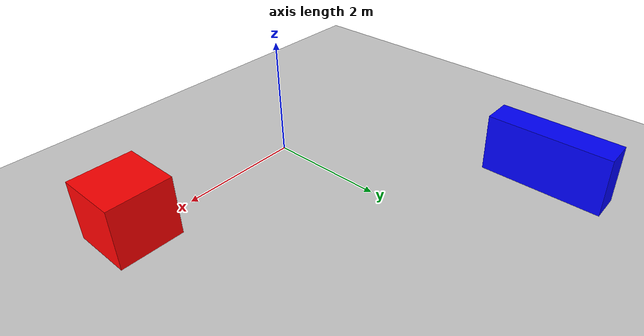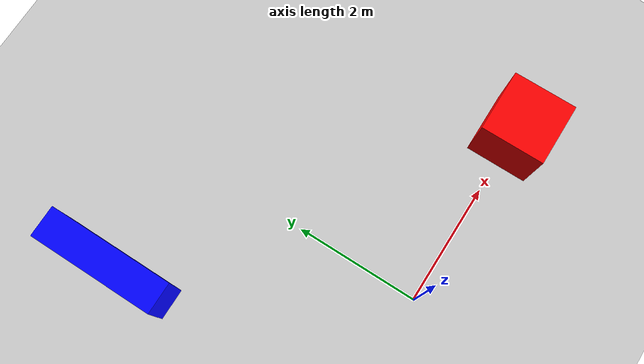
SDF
<?xml version="1.0" ?>
<sdf version="1.6">
  <world name="uav_world">

    <!-- Default ground plane -->
    <include>
      <uri>model://ground_plane</uri>
    </include>

    <!-- Sunlight -->
    <include>
      <uri>model://sun</uri>
    </include>

    <!-- Obstacle 1 -->
    <model name="obstacle_1">
      <pose>3 0 0.5 0 0 0</pose>
      <static>true</static>
      <link name="link">
        <collision name="collision">
          <geometry>
            <box><size>1 1 1</size></box>
          </geometry>
        </collision>
        <visual name="visual">
          <geometry>
            <box><size>1 1 1</size></box>
          </geometry>
          <material>
            <ambient>1 0 0 1</ambient>
          </material>
        </visual>
      </link>
    </model>

    <!-- Obstacle 2 -->
    <model name="obstacle_2">
      <pose>-2 4 0.5 0 0 0</pose>
      <static>true</static>
      <link name="link">
        <collision name="collision">
          <geometry>
            <box><size>0.5 2 1</size></box>
          </geometry>
        </collision>
        <visual name="visual">
          <geometry>
            <box><size>0.5 2 1</size></box>
          </geometry>
          <material>
            <ambient>0 0 1 1</ambient>
          </material>
        </visual>
      </link>
    </model>

  </world>
</sdf>
